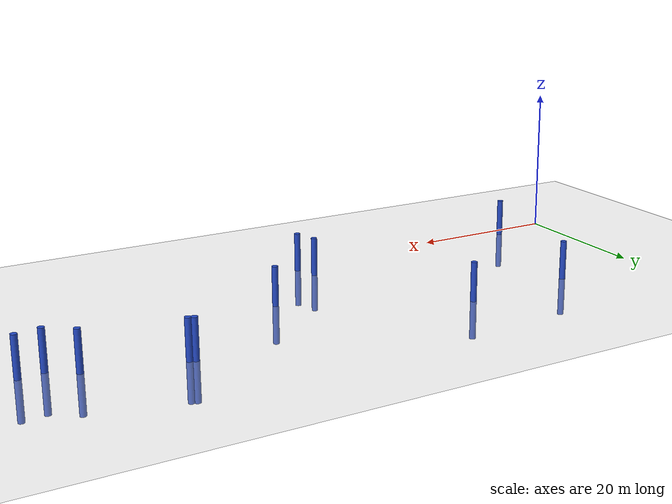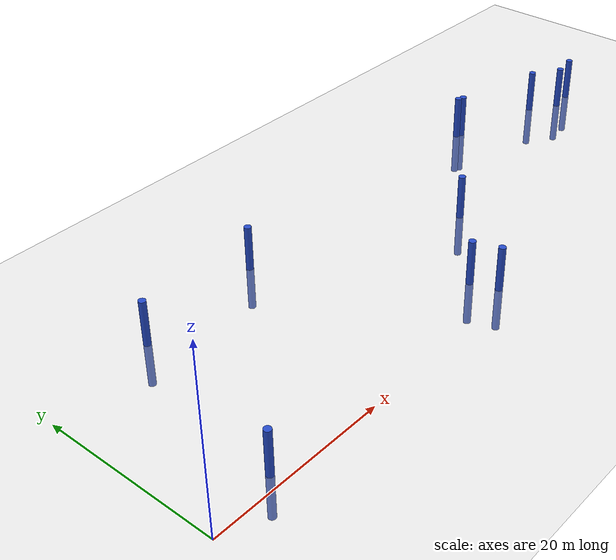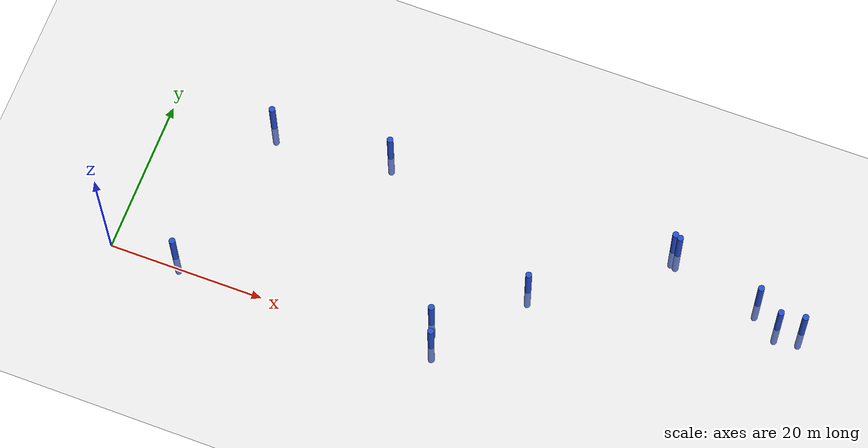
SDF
<?xml version="1.0" encoding="UTF-8"?>
<sdf version="1.9">
  <world name="trees">
    <physics type="ode">
      <max_step_size>0.004</max_step_size>
      <real_time_factor>1.0</real_time_factor>
      <real_time_update_rate>250</real_time_update_rate>
    </physics>
    <plugin name="gz::sim::systems::Physics" filename="gz-sim-physics-system"/>
    <plugin name="gz::sim::systems::UserCommands" filename="gz-sim-user-commands-system"/>
    <plugin name="gz::sim::systems::SceneBroadcaster" filename="gz-sim-scene-broadcaster-system"/>
    <plugin name="gz::sim::systems::Contact" filename="gz-sim-contact-system"/>
    <plugin name="gz::sim::systems::Imu" filename="gz-sim-imu-system"/>
    <plugin name="gz::sim::systems::AirPressure" filename="gz-sim-air-pressure-system"/>
    <plugin name="gz::sim::systems::ApplyLinkWrench" filename="gz-sim-apply-link-wrench-system"/>
    <plugin name="gz::sim::systems::NavSat" filename="gz-sim-navsat-system"/>
    <plugin name="gz::sim::systems::Sensors" filename="gz-sim-sensors-system">
      <render_engine>ogre2</render_engine>
    </plugin>
    <gui fullscreen="false">
      <!-- 3D scene -->
      <plugin filename="MinimalScene" name="3D View">
        <gz-gui>
          <title>3D View</title>
          <property type="bool" key="showTitleBar">false</property>
          <property type="string" key="state">docked</property>
        </gz-gui>
        <engine>ogre2</engine>
        <scene>scene</scene>
        <ambient_light>0.4 0.4 0.4</ambient_light>
        <background_color>0.8 0.8 0.8</background_color>
        <camera_pose>-6 0 6 0 0.5 0</camera_pose>
        <camera_clip>
          <near>0.25</near>
          <far>25000</far>
        </camera_clip>
      </plugin>
      <!-- Plugins that add functionality to the scene -->
      <plugin filename="EntityContextMenuPlugin" name="Entity context menu">
        <gz-gui>
          <property key="state" type="string">floating</property>
          <property key="width" type="double">5</property>
          <property key="height" type="double">5</property>
          <property key="showTitleBar" type="bool">false</property>
        </gz-gui>
      </plugin>
      <plugin filename="GzSceneManager" name="Scene Manager">
        <gz-gui>
          <property key="resizable" type="bool">false</property>
          <property key="width" type="double">5</property>
          <property key="height" type="double">5</property>
          <property key="state" type="string">floating</property>
          <property key="showTitleBar" type="bool">false</property>
        </gz-gui>
      </plugin>
      <plugin filename="InteractiveViewControl" name="Interactive view control">
        <gz-gui>
          <property key="resizable" type="bool">false</property>
          <property key="width" type="double">5</property>
          <property key="height" type="double">5</property>
          <property key="state" type="string">floating</property>
          <property key="showTitleBar" type="bool">false</property>
        </gz-gui>
      </plugin>
      <plugin filename="CameraTracking" name="Camera Tracking">
        <gz-gui>
          <property key="resizable" type="bool">false</property>
          <property key="width" type="double">5</property>
          <property key="height" type="double">5</property>
          <property key="state" type="string">floating</property>
          <property key="showTitleBar" type="bool">false</property>
        </gz-gui>
      </plugin>
      <plugin filename="MarkerManager" name="Marker manager">
        <gz-gui>
          <property key="resizable" type="bool">false</property>
          <property key="width" type="double">5</property>
          <property key="height" type="double">5</property>
          <property key="state" type="string">floating</property>
          <property key="showTitleBar" type="bool">false</property>
        </gz-gui>
      </plugin>
      <plugin filename="SelectEntities" name="Select Entities">
        <gz-gui>
          <anchors target="Select entities">
            <line own="right" target="right"/>
            <line own="top" target="top"/>
          </anchors>
          <property key="resizable" type="bool">false</property>
          <property key="width" type="double">5</property>
          <property key="height" type="double">5</property>
          <property key="state" type="string">floating</property>
          <property key="showTitleBar" type="bool">false</property>
        </gz-gui>
      </plugin>
      <plugin filename="VisualizationCapabilities" name="Visualization Capabilities">
        <gz-gui>
          <property key="resizable" type="bool">false</property>
          <property key="width" type="double">5</property>
          <property key="height" type="double">5</property>
          <property key="state" type="string">floating</property>
          <property key="showTitleBar" type="bool">false</property>
        </gz-gui>
      </plugin>
      <plugin filename="Spawn" name="Spawn Entities">
        <gz-gui>
          <anchors target="Select entities">
            <line own="right" target="right"/>
            <line own="top" target="top"/>
          </anchors>
          <property key="resizable" type="bool">false</property>
          <property key="width" type="double">5</property>
          <property key="height" type="double">5</property>
          <property key="state" type="string">floating</property>
          <property key="showTitleBar" type="bool">false</property>
        </gz-gui>
      </plugin>
      <plugin name="World control" filename="WorldControl">
        <gz-gui>
          <title>World control</title>
          <property type="bool" key="showTitleBar">0</property>
          <property type="bool" key="resizable">0</property>
          <property type="double" key="height">72</property>
          <property type="double" key="width">121</property>
          <property type="double" key="z">1</property>
          <property type="string" key="state">floating</property>
          <anchors target="3D View">
            <line own="left" target="left"/>
            <line own="bottom" target="bottom"/>
          </anchors>
        </gz-gui>
        <play_pause>1</play_pause>
        <step>1</step>
        <start_paused>1</start_paused>
      </plugin>
      <plugin name="World stats" filename="WorldStats">
        <gz-gui>
          <title>World stats</title>
          <property type="bool" key="showTitleBar">0</property>
          <property type="bool" key="resizable">0</property>
          <property type="double" key="height">110</property>
          <property type="double" key="width">290</property>
          <property type="double" key="z">1</property>
          <property type="string" key="state">floating</property>
          <anchors target="3D View">
            <line own="right" target="right"/>
            <line own="bottom" target="bottom"/>
          </anchors>
        </gz-gui>
        <sim_time>1</sim_time>
        <real_time>1</real_time>
        <real_time_factor>1</real_time_factor>
        <iterations>1</iterations>
      </plugin>
      <plugin name="Entity tree" filename="EntityTree"/>
    </gui>
    <gravity>0 0 -9.8</gravity>
    <magnetic_field>6e-06 2.3e-05 -4.2e-05</magnetic_field>
    <atmosphere type="adiabatic"/>
    <scene>
      <grid>false</grid>
      <ambient>0.4 0.4 0.4 1</ambient>
      <background>0.7 0.7 0.7 1</background>
      <shadows>true</shadows>
    </scene>
    <model name="ground_plane">
      <static>true</static>
      <link name="link">
        <collision name="collision">
          <geometry>
            <plane>
              <normal>0 0 1</normal>
              <size>500 500</size>
            </plane>
          </geometry>
          <surface>
            <friction>
              <ode/>
            </friction>
            <bounce/>
            <contact/>
          </surface>
        </collision>
        <visual name="visual">
          <geometry>
            <plane>
              <normal>0 0 1</normal>
              <size>500 500</size>
            </plane>
          </geometry>
          <material>
            <ambient>0.8 0.8 0.8 1</ambient>
            <diffuse>0.8 0.8 0.8 1</diffuse>
            <specular>0.8 0.8 0.8 1</specular>
          </material>
        </visual>
        <pose>0 0 0 0 -0 0</pose>
        <inertial>
          <pose>0 0 0 0 -0 0</pose>
          <mass>1</mass>
          <inertia>
            <ixx>1</ixx>
            <ixy>0</ixy>
            <ixz>0</ixz>
            <iyy>1</iyy>
            <iyz>0</iyz>
            <izz>1</izz>
          </inertia>
        </inertial>
        <enable_wind>false</enable_wind>
      </link>
      <pose>0 0 0 0 -0 0</pose>
      <self_collide>false</self_collide>
    </model>
    <light name="sunUTC" type="directional">
      <pose>0 0 500 0 -0 0</pose>
      <cast_shadows>true</cast_shadows>
      <intensity>1</intensity>
      <direction>0.001 0.625 -0.78</direction>
      <diffuse>0.904 0.904 0.904 1</diffuse>
      <specular>0.271 0.271 0.271 1</specular>
      <attenuation>
        <range>2000</range>
        <linear>0</linear>
        <constant>1</constant>
        <quadratic>0</quadratic>
      </attenuation>
      <spot>
        <inner_angle>0</inner_angle>
        <outer_angle>0</outer_angle>
        <falloff>0</falloff>
      </spot>
    </light>
    <spherical_coordinates>
      <surface_model>EARTH_WGS84</surface_model>
      <world_frame_orientation>ENU</world_frame_orientation>
      <latitude_deg>38.31633</latitude_deg>
      <longitude_deg> -76.55578</longitude_deg>
      <elevation>0</elevation>
    </spherical_coordinates>

    <model name='tree1'>
	<static>1</static>
	<pose>83.82835239162783 19.089890733594206 0 0 -0 0</pose>
<link name='link'>
<gravity>0</gravity>
	<inertial>
	<mass>1</mass>
	<inertia>
		<ixx>0.0001</ixx>
		<ixy>0</ixy>
		<ixz>0</ixz>
		<iyy>0.0001</iyy>
		<iyz>0</iyz>
		<izz>0.0001</izz>
	</inertia>
<pose> 0 0 0 0 -0 0</pose>
</inertial>
<collision name='collision'>
	<max_contacts>0</max_contacts>
	<geometry>
		<cylinder>
			<radius>0.4</radius>
			<length>10.24</length>
		</cylinder>
	</geometry>
	<surface>
		<contact>
			<collide_without_contact>true</collide_without_contact>
			<collide_bitmask>0</collide_bitmask>
		</contact>
	</surface>
</collision>
<visual name='visual'>
	<geometry>
		<cylinder>
			<radius>.4</radius>
			<length>10.24</length>
		</cylinder>
	</geometry>
	<material>
		<script>
			<name>Gazebo/Blue</name>
			<uri>file://media/materials/scripts/gazebo.material</uri>
		</script>
	</material>
</visual>
<self_collide>0</self_collide>
<enable_wind>0</enable_wind>
<kinematic>0</kinematic>
</link>
</model>
<model name='tree2'>
	<static>1</static>
	<pose>28.133110341991276 23.470783754862968 0 0 -0 0</pose>
<link name='link'>
<gravity>0</gravity>
	<inertial>
	<mass>1</mass>
	<inertia>
		<ixx>0.0001</ixx>
		<ixy>0</ixy>
		<ixz>0</ixz>
		<iyy>0.0001</iyy>
		<iyz>0</iyz>
		<izz>0.0001</izz>
	</inertia>
<pose> 0 0 0 0 -0 0</pose>
</inertial>
<collision name='collision'>
	<max_contacts>0</max_contacts>
	<geometry>
		<cylinder>
			<radius>0.4</radius>
			<length>10.24</length>
		</cylinder>
	</geometry>
	<surface>
		<contact>
			<collide_without_contact>true</collide_without_contact>
			<collide_bitmask>0</collide_bitmask>
		</contact>
	</surface>
</collision>
<visual name='visual'>
	<geometry>
		<cylinder>
			<radius>.4</radius>
			<length>10.24</length>
		</cylinder>
	</geometry>
	<material>
		<script>
			<name>Gazebo/Blue</name>
			<uri>file://media/materials/scripts/gazebo.material</uri>
		</script>
	</material>
</visual>
<self_collide>0</self_collide>
<enable_wind>0</enable_wind>
<kinematic>0</kinematic>
</link>
</model>
<model name='tree3'>
	<static>1</static>
	<pose>12.85428910413026 22.1970768888794 0 0 -0 0</pose>
<link name='link'>
<gravity>0</gravity>
	<inertial>
	<mass>1</mass>
	<inertia>
		<ixx>0.0001</ixx>
		<ixy>0</ixy>
		<ixz>0</ixz>
		<iyy>0.0001</iyy>
		<iyz>0</iyz>
		<izz>0.0001</izz>
	</inertia>
<pose> 0 0 0 0 -0 0</pose>
</inertial>
<collision name='collision'>
	<max_contacts>0</max_contacts>
	<geometry>
		<cylinder>
			<radius>0.4</radius>
			<length>10.24</length>
		</cylinder>
	</geometry>
	<surface>
		<contact>
			<collide_without_contact>true</collide_without_contact>
			<collide_bitmask>0</collide_bitmask>
		</contact>
	</surface>
</collision>
<visual name='visual'>
	<geometry>
		<cylinder>
			<radius>.4</radius>
			<length>10.24</length>
		</cylinder>
	</geometry>
	<material>
		<script>
			<name>Gazebo/Blue</name>
			<uri>file://media/materials/scripts/gazebo.material</uri>
		</script>
	</material>
</visual>
<self_collide>0</self_collide>
<enable_wind>0</enable_wind>
<kinematic>0</kinematic>
</link>
</model>
<model name='tree4'>
	<static>1</static>
	<pose>65.53437907553189 23.839840242370627 0 0 -0 0</pose>
<link name='link'>
<gravity>0</gravity>
	<inertial>
	<mass>1</mass>
	<inertia>
		<ixx>0.0001</ixx>
		<ixy>0</ixy>
		<ixz>0</ixz>
		<iyy>0.0001</iyy>
		<iyz>0</iyz>
		<izz>0.0001</izz>
	</inertia>
<pose> 0 0 0 0 -0 0</pose>
</inertial>
<collision name='collision'>
	<max_contacts>0</max_contacts>
	<geometry>
		<cylinder>
			<radius>0.4</radius>
			<length>10.24</length>
		</cylinder>
	</geometry>
	<surface>
		<contact>
			<collide_without_contact>true</collide_without_contact>
			<collide_bitmask>0</collide_bitmask>
		</contact>
	</surface>
</collision>
<visual name='visual'>
	<geometry>
		<cylinder>
			<radius>.4</radius>
			<length>10.24</length>
		</cylinder>
	</geometry>
	<material>
		<script>
			<name>Gazebo/Blue</name>
			<uri>file://media/materials/scripts/gazebo.material</uri>
		</script>
	</material>
</visual>
<self_collide>0</self_collide>
<enable_wind>0</enable_wind>
<kinematic>0</kinematic>
</link>
</model>
<model name='tree5'>
	<static>1</static>
	<pose>77.60505068174447 20.798970032996706 0 0 -0 0</pose>
<link name='link'>
<gravity>0</gravity>
	<inertial>
	<mass>1</mass>
	<inertia>
		<ixx>0.0001</ixx>
		<ixy>0</ixy>
		<ixz>0</ixz>
		<iyy>0.0001</iyy>
		<iyz>0</iyz>
		<izz>0.0001</izz>
	</inertia>
<pose> 0 0 0 0 -0 0</pose>
</inertial>
<collision name='collision'>
	<max_contacts>0</max_contacts>
	<geometry>
		<cylinder>
			<radius>0.4</radius>
			<length>10.24</length>
		</cylinder>
	</geometry>
	<surface>
		<contact>
			<collide_without_contact>true</collide_without_contact>
			<collide_bitmask>0</collide_bitmask>
		</contact>
	</surface>
</collision>
<visual name='visual'>
	<geometry>
		<cylinder>
			<radius>.4</radius>
			<length>10.24</length>
		</cylinder>
	</geometry>
	<material>
		<script>
			<name>Gazebo/Blue</name>
			<uri>file://media/materials/scripts/gazebo.material</uri>
		</script>
	</material>
</visual>
<self_collide>0</self_collide>
<enable_wind>0</enable_wind>
<kinematic>0</kinematic>
</link>
</model>
<model name='tree6'>
	<static>1</static>
	<pose>50.45059853291168 12.530370532243216 0 0 -0 0</pose>
<link name='link'>
<gravity>0</gravity>
	<inertial>
	<mass>1</mass>
	<inertia>
		<ixx>0.0001</ixx>
		<ixy>0</ixy>
		<ixz>0</ixz>
		<iyy>0.0001</iyy>
		<iyz>0</iyz>
		<izz>0.0001</izz>
	</inertia>
<pose> 0 0 0 0 -0 0</pose>
</inertial>
<collision name='collision'>
	<max_contacts>0</max_contacts>
	<geometry>
		<cylinder>
			<radius>0.4</radius>
			<length>10.24</length>
		</cylinder>
	</geometry>
	<surface>
		<contact>
			<collide_without_contact>true</collide_without_contact>
			<collide_bitmask>0</collide_bitmask>
		</contact>
	</surface>
</collision>
<visual name='visual'>
	<geometry>
		<cylinder>
			<radius>.4</radius>
			<length>10.24</length>
		</cylinder>
	</geometry>
	<material>
		<script>
			<name>Gazebo/Blue</name>
			<uri>file://media/materials/scripts/gazebo.material</uri>
		</script>
	</material>
</visual>
<self_collide>0</self_collide>
<enable_wind>0</enable_wind>
<kinematic>0</kinematic>
</link>
</model>
<model name='tree7'>
	<static>1</static>
	<pose>66.21086856337438 23.605446100793475 0 0 -0 0</pose>
<link name='link'>
<gravity>0</gravity>
	<inertial>
	<mass>1</mass>
	<inertia>
		<ixx>0.0001</ixx>
		<ixy>0</ixy>
		<ixz>0</ixz>
		<iyy>0.0001</iyy>
		<iyz>0</iyz>
		<izz>0.0001</izz>
	</inertia>
<pose> 0 0 0 0 -0 0</pose>
</inertial>
<collision name='collision'>
	<max_contacts>0</max_contacts>
	<geometry>
		<cylinder>
			<radius>0.4</radius>
			<length>10.24</length>
		</cylinder>
	</geometry>
	<surface>
		<contact>
			<collide_without_contact>true</collide_without_contact>
			<collide_bitmask>0</collide_bitmask>
		</contact>
	</surface>
</collision>
<visual name='visual'>
	<geometry>
		<cylinder>
			<radius>.4</radius>
			<length>10.24</length>
		</cylinder>
	</geometry>
	<material>
		<script>
			<name>Gazebo/Blue</name>
			<uri>file://media/materials/scripts/gazebo.material</uri>
		</script>
	</material>
</visual>
<self_collide>0</self_collide>
<enable_wind>0</enable_wind>
<kinematic>0</kinematic>
</link>
</model>
<model name='tree8'>
	<static>1</static>
	<pose>41.827853255667875 1.4924250989696084 0 0 -0 0</pose>
<link name='link'>
<gravity>0</gravity>
	<inertial>
	<mass>1</mass>
	<inertia>
		<ixx>0.0001</ixx>
		<ixy>0</ixy>
		<ixz>0</ixz>
		<iyy>0.0001</iyy>
		<iyz>0</iyz>
		<izz>0.0001</izz>
	</inertia>
<pose> 0 0 0 0 -0 0</pose>
</inertial>
<collision name='collision'>
	<max_contacts>0</max_contacts>
	<geometry>
		<cylinder>
			<radius>0.4</radius>
			<length>10.24</length>
		</cylinder>
	</geometry>
	<surface>
		<contact>
			<collide_without_contact>true</collide_without_contact>
			<collide_bitmask>0</collide_bitmask>
		</contact>
	</surface>
</collision>
<visual name='visual'>
	<geometry>
		<cylinder>
			<radius>.4</radius>
			<length>10.24</length>
		</cylinder>
	</geometry>
	<material>
		<script>
			<name>Gazebo/Blue</name>
			<uri>file://media/materials/scripts/gazebo.material</uri>
		</script>
	</material>
</visual>
<self_collide>0</self_collide>
<enable_wind>0</enable_wind>
<kinematic>0</kinematic>
</link>
</model>
<model name='tree9'>
	<static>1</static>
	<pose>40.799902883472456 4.408093044575427 0 0 -0 0</pose>
<link name='link'>
<gravity>0</gravity>
	<inertial>
	<mass>1</mass>
	<inertia>
		<ixx>0.0001</ixx>
		<ixy>0</ixy>
		<ixz>0</ixz>
		<iyy>0.0001</iyy>
		<iyz>0</iyz>
		<izz>0.0001</izz>
	</inertia>
<pose> 0 0 0 0 -0 0</pose>
</inertial>
<collision name='collision'>
	<max_contacts>0</max_contacts>
	<geometry>
		<cylinder>
			<radius>0.4</radius>
			<length>10.24</length>
		</cylinder>
	</geometry>
	<surface>
		<contact>
			<collide_without_contact>true</collide_without_contact>
			<collide_bitmask>0</collide_bitmask>
		</contact>
	</surface>
</collision>
<visual name='visual'>
	<geometry>
		<cylinder>
			<radius>.4</radius>
			<length>10.24</length>
		</cylinder>
	</geometry>
	<material>
		<script>
			<name>Gazebo/Blue</name>
			<uri>file://media/materials/scripts/gazebo.material</uri>
		</script>
	</material>
</visual>
<self_collide>0</self_collide>
<enable_wind>0</enable_wind>
<kinematic>0</kinematic>
</link>
</model>
<model name='tree10'>
	<static>1</static>
	<pose>80.85082980463443 18.637600418852983 0 0 -0 0</pose>
<link name='link'>
<gravity>0</gravity>
	<inertial>
	<mass>1</mass>
	<inertia>
		<ixx>0.0001</ixx>
		<ixy>0</ixy>
		<ixz>0</ixz>
		<iyy>0.0001</iyy>
		<iyz>0</iyz>
		<izz>0.0001</izz>
	</inertia>
<pose> 0 0 0 0 -0 0</pose>
</inertial>
<collision name='collision'>
	<max_contacts>0</max_contacts>
	<geometry>
		<cylinder>
			<radius>0.4</radius>
			<length>10.24</length>
		</cylinder>
	</geometry>
	<surface>
		<contact>
			<collide_without_contact>true</collide_without_contact>
			<collide_bitmask>0</collide_bitmask>
		</contact>
	</surface>
</collision>
<visual name='visual'>
	<geometry>
		<cylinder>
			<radius>.4</radius>
			<length>10.24</length>
		</cylinder>
	</geometry>
	<material>
		<script>
			<name>Gazebo/Blue</name>
			<uri>file://media/materials/scripts/gazebo.material</uri>
		</script>
	</material>
</visual>
<self_collide>0</self_collide>
<enable_wind>0</enable_wind>
<kinematic>0</kinematic>
</link>
</model>
<model name='tree11'>
	<static>1</static>
	<pose>7.958535023227081 1.443589552029288 0 0 -0 0</pose>
<link name='link'>
<gravity>0</gravity>
	<inertial>
	<mass>1</mass>
	<inertia>
		<ixx>0.0001</ixx>
		<ixy>0</ixy>
		<ixz>0</ixz>
		<iyy>0.0001</iyy>
		<iyz>0</iyz>
		<izz>0.0001</izz>
	</inertia>
<pose> 0 0 0 0 -0 0</pose>
</inertial>
<collision name='collision'>
	<max_contacts>0</max_contacts>
	<geometry>
		<cylinder>
			<radius>0.4</radius>
			<length>10.24</length>
		</cylinder>
	</geometry>
	<surface>
		<contact>
			<collide_without_contact>true</collide_without_contact>
			<collide_bitmask>0</collide_bitmask>
		</contact>
	</surface>
</collision>
<visual name='visual'>
	<geometry>
		<cylinder>
			<radius>.4</radius>
			<length>10.24</length>
		</cylinder>
	</geometry>
	<material>
		<script>
			<name>Gazebo/Blue</name>
			<uri>file://media/materials/scripts/gazebo.material</uri>
		</script>
	</material>
</visual>
<self_collide>0</self_collide>
<enable_wind>0</enable_wind>
<kinematic>0</kinematic>
</link>
</model>
</world>
</sdf>
